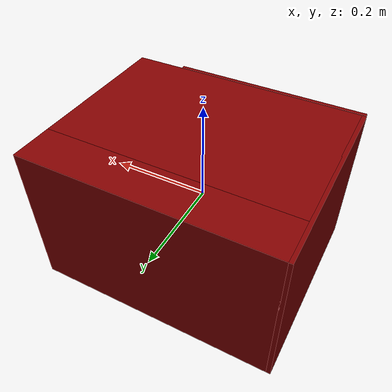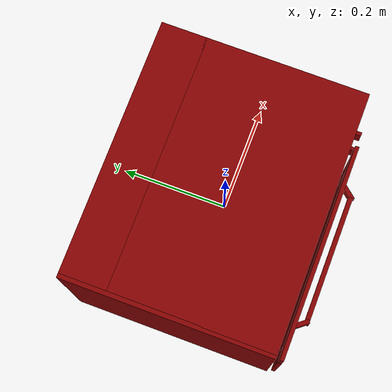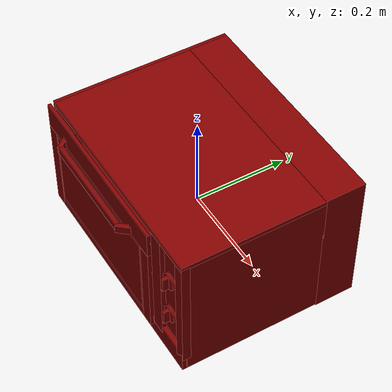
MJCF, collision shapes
<?xml version='1.0' encoding='UTF-8'?>
<mujoco model="model">
  <compiler angle="radian"/>
  <asset>
    <mesh file="visuals/Body001.obj" name="Body001_vis"/>
    <mesh file="visuals/Door001.obj" name="Door001_vis"/>
    <mesh file="visuals/Door001_Clear.obj" name="Door001_Clear_vis"/>
    <mesh file="visuals/Knob001.obj" name="Knob001_vis"/>
    <mesh file="visuals/Knob002.obj" name="Knob002_vis"/>
    <mesh file="visuals/Shelf001.obj" name="Shelf001_vis"/>
    <mesh file="visuals/Shelf002.obj" name="Shelf002_vis"/>
    <texture file="visuals/T_BC001.png" name="Body001_material" type="2d"/>
    <material name="Body001_material" rgba="1 1 1 1.0" texture="Body001_material" shininess="0.141421377658844" specular="1"/>
    <texture file="visuals/T_BC001.png" name="Door001_material" type="2d"/>
    <material name="Door001_material" rgba="1 1 1 1.0" texture="Door001_material" shininess="0.141421377658844" specular="1"/>
    <texture file="visuals/T_BC001.png" name="Door001_Clear_material" type="2d"/>
    <material name="Door001_Clear_material" rgba="1 1 1 0.800000011920929" texture="Door001_Clear_material" shininess="0.5" specular="0.3103448502657381"/>
    <texture file="visuals/T_BC001.png" name="Knob001_material" type="2d"/>
    <material name="Knob001_material" rgba="1 1 1 1.0" texture="Knob001_material" shininess="0.141421377658844" specular="0.3103448502657381"/>
    <texture file="visuals/T_BC001.png" name="Knob002_material" type="2d"/>
    <material name="Knob002_material" rgba="1 1 1 1.0" texture="Knob002_material" shininess="0.141421377658844" specular="0.3103448502657381"/>
    <texture file="visuals/T_BC001.png" name="Shelf001_material" type="2d"/>
    <material name="Shelf001_material" rgba="1 1 1 1.0" texture="Shelf001_material" shininess="0.141421377658844" specular="2"/>
    <texture file="visuals/T_BC001.png" name="Shelf002_material" type="2d"/>
    <material name="Shelf002_material" rgba="1 1 1 1.0" texture="Shelf002_material" shininess="0.141421377658844" specular="2"/>
  </asset>
  <default>
    <default class="visual">
      <geom conaffinity="0" contype="0" group="1" type="mesh"/>
    </default>
    <default class="collision">
      <geom group="0" rgba="0.5 0 0 0.5"/>
    </default>
    <default class="spawn">
      <geom group="0" rgba="1 1 1 0.5" contype="0" conaffinity="0"/>
      <site group="0" rgba="1 1 1 0.5"/>
    </default>
    <default class="region">
      <geom group="1" conaffinity="0" contype="0" rgba="0 1 0 0"/>
    </default>
  </default>
  <worldbody>
    <body>
      <body name="object">
        <geom mesh="Body001_vis" type="mesh" solimp="0.998 0.998 0.001" solref="0.001 1" density="100" friction="0.95 0.3 0.1" class="visual" material="Body001_material"/>
        <geom class="collision" type="box" pos="-0.2441130429506302 0.016248559579253197 5.9958576457574964e-05" size="0.00419982336461544 0.19757267832756042 0.15339186787605286" quat="1.0 0.0 0.0 0.0"/>
        <geom class="collision" type="box" pos="0.0035577856469899416 0.16968154907226562 5.9958576457574964e-05" size="0.24486888945102692 0.04413968697190285 0.15339186787605286" quat="1.0 0.0 0.0 0.0"/>
        <geom class="collision" type="box" pos="0.19376103579998016 -0.021811120212078094 -0.0015165776712819934" size="0.054665617644786835 0.14970235526561737 0.1484030783176422" quat="1.0 0.0 0.0 0.0"/>
        <geom class="collision" type="box" pos="0.15547572076320648 -0.17223013937473297 0.012488478794693947" size="0.015834785997867584 0.009101390838623047 0.13439801335334778" quat="1.0 0.0 0.0 0.0"/>
        <geom class="collision" type="box" pos="0.2371997833251953 -0.17223013937473297 0.012488478794693947" size="0.011356345377862453 0.009101390838623047 0.13439801335334778" quat="1.0 0.0 0.0 0.0"/>
        <geom class="collision" type="box" pos="0.0034546770621091127 -0.01811899244785309 -0.1288248598575592" size="0.24352025985717773 0.16321253776550293 0.023925891146063805" quat="1.0 0.0 0.0 0.0"/>
        <geom class="collision" type="box" pos="0.0035577856469899416 -0.026760555803775787 0.1486905813217163" size="0.24486888945102692 0.15465179085731506 0.004761239048093557" quat="1.0 0.0 0.0 0.0"/>
        <body name="Door001">
          <joint axis="1.0 0.0 0.0" pos="-0.048775337636470795 -0.18787136673927307 -0.11310728639364243" limited="true" name="Door001_joint" range="0.0 1.5707963267948966" type="hinge" damping="1" frictionloss="1" armature=".01" stiffness="0.8" springref="-0.1"/>
          <geom mesh="Door001_vis" type="mesh" solimp="0.998 0.998 0.001" solref="0.001 1" density="100" friction="0.95 0.3 0.1" class="visual" material="Door001_material"/>
          <geom class="collision" type="box" pos="-0.04814569652080536 -0.19160351157188416 0.12263495475053787" size="0.1985292136669159 0.0036813917104154825 0.027727477252483368" quat="1.0 0.0 0.0 0.0"/>
          <geom class="collision" type="box" pos="-0.050485193729400635 -0.21175143122673035 0.10493189841508865" size="0.11941026896238327 0.004057358019053936 0.009291715919971466" quat="1.0 0.0 0.0 0.0"/>
          <geom class="collision" type="box" pos="0.07665327191352844 -0.20415230095386505 0.10493189841508865" size="0.01539598684757948 0.004057358019053936 0.009291715919971466" quat="0.907344400882721 0.0 0.0 0.4203880727291107"/>
          <geom class="collision" type="box" pos="-0.1726234406232834 -0.2026226818561554 0.10493189841508865" size="0.01539598684757948 0.004057358019053936 0.009291715919971466" quat="0.4325786530971527 0.0 0.0 0.901596188545227"/>
          <geom class="collision" type="box" pos="-0.23212796449661255 -0.19160351157188416 -0.008206048980355263" size="0.014546982012689114 0.0036813917104154825 0.10311352461576462" quat="1.0 0.0 0.0 0.0"/>
          <geom class="collision" type="box" pos="0.1367560774087906 -0.19160351157188416 -0.008206052705645561" size="0.013627446256577969 0.0036813917104154825 0.10311352461576462" quat="1.0 0.0 0.0 0.0"/>
          <geom class="collision" type="box" pos="-0.0472261942923069 -0.19160351157188416 -0.10271437466144562" size="0.17035481333732605 0.0036813917104154825 0.00860521662980318" quat="1.0 0.0 0.0 0.0"/>
          <body name="Door001_Clear">
            <geom mesh="Door001_Clear_vis" type="mesh" solimp="0.998 0.998 0.001" solref="0.001 1" density="100" friction="0.95 0.3 0.1" class="visual" material="Door001_Clear_material"/>
            <geom class="collision" type="box" pos="-0.0472261942923069 -0.19160351157188416 0.0007110745646059513" size="0.1658865213394165 0.0036813917104154825 0.09052855521440506" quat="1.0 0.0 0.0 0.0"/>
          </body>
        </body>
        <body name="Knob001">
          <joint axis="0.0 1.0 0.0" pos="0.1982269287109375 -0.17756953835487366 0.06402279436588287" limited="true" name="Knob001_joint" range="0.0 4.625122517784973" type="hinge" damping="0.05" armature="0.001"/>
          <geom mesh="Knob001_vis" type="mesh" solimp="0.998 0.998 0.001" solref="0.001 1" density="100" friction="0.95 0.3 0.1" class="visual" material="Knob001_material"/>
          <geom class="collision" type="box" pos="0.19860117137432098 -0.1873530149459839 0.0640273466706276" size="0.0034536204766482115 0.006564540322870016 0.015590326860547066" quat="1.0 0.0 0.0 0.0"/>
          <geom class="collision" type="cylinder" pos="0.1980726718902588 -0.17784664034843445 0.06423473358154297" size="0.017978839576244354 0.0029833735898137093" quat="0.7071067094802856 0.7071068286895752 0.0 0.0"/>
        </body>
        <body name="Knob002">
          <joint axis="0.0 1.0 0.0" pos="0.1982269287109375 -0.17756953835487366 -0.03266529738903046" limited="true" name="Knob002_joint" range="0.0 4.799655442984406" type="hinge" damping="0.05" armature="0.001"/>
          <geom mesh="Knob002_vis" type="mesh" solimp="0.998 0.998 0.001" solref="0.001 1" density="100" friction="0.95 0.3 0.1" class="visual" material="Knob002_material"/>
          <geom class="collision" type="box" pos="0.19860117137432098 -0.1873530149459839 -0.03247858211398125" size="0.0034536204766482115 0.006564540322870016 0.015952182933688164" quat="1.0 0.0 0.0 0.0"/>
          <geom class="collision" type="cylinder" pos="0.1980726718902588 -0.17784664034843445 -0.032568540424108505" size="0.017978839576244354 0.0029833735898137093" quat="0.7071067094802856 0.7071068286895752 0.0 0.0"/>
        </body>
        <body name="Shelf001">
          <joint axis="0.0 -1.0 0.0" pos="-0.049605634063482285 -0.0227875504642725 0.04992767050862312" limited="true" name="Shelf001_joint" range="0.0 0.2" type="slide" damping="1" frictionloss="1" armature=".01" stiffness="0.05"/>
          <geom mesh="Shelf001_vis" type="mesh" solimp="0.998 0.998 0.001" solref="0.001 1" density="100" friction="0.95 0.3 0.1" class="visual" material="Shelf001_material"/>
          <geom class="collision" type="box" pos="-0.05084526538848877 -0.02230246737599373 0.03639897331595421" size="0.1735331416130066 0.1302265077829361 0.002406227868050337" quat="1.0 0.0 0.0 0.0"/>
          <geom class="collision" type="box" pos="0.12663137912750244 -0.02217262238264084 0.04547247663140297" size="0.012199101969599724 0.13035635650157928 0.002406227868050337" quat="0.9129273295402527 0.0 -0.408122181892395 0.0"/>
          <geom class="collision" type="box" pos="-0.22785645723342896 -0.02230246737599373 0.044808804988861084" size="0.011334135197103024 0.1302265077829361 0.0024062281008809805" quat="0.48012229800224304 -0.0 -0.8772015571594238 -0.0"/>
        </body>
        <body name="Shelf002">
          <joint axis="0.0 -1.0 0.0" pos="-0.049605634063482285 -0.0227875504642725 -0.03988266363739967" limited="true" name="Shelf002_joint" range="0.0 0.2" type="slide" damping="1" frictionloss="1" armature=".01" stiffness="0.05"/>
          <geom mesh="Shelf002_vis" type="mesh" solimp="0.998 0.998 0.001" solref="0.001 1" density="100" friction="0.95 0.3 0.1" class="visual" material="Shelf002_material"/>
          <geom class="collision" type="box" pos="-0.05084526538848877 -0.02230246737599373 -0.05209459736943245" size="0.1735331416130066 0.1302265077829361 0.0024062234442681074" quat="1.0 0.0 0.0 0.0"/>
          <geom class="collision" type="box" pos="0.1256789267063141 -0.02230246737599373 -0.04503250867128372" size="0.010853913612663746 0.1302265077829361 0.002406227868050337" quat="0.9129273295402527 0.0 -0.408122181892395 0.0"/>
          <geom class="collision" type="box" pos="-0.22870148718357086 -0.02230246737599373 -0.04446806386113167" size="0.011601341888308525 0.1302265077829361 0.002406228333711624" quat="0.487621545791626 -0.0 -0.873055100440979 -0.0"/>
        </body>
        <geom class="region" name="reg_main" type="box" pos="-7.82310962677002e-08 0.009792514145374298 -2.2351741790771484e-08" size="0.24947988986968994 0.20587435364723206 0.1545785367488861"/>
        <geom class="region" name="reg_int" type="box" pos="-0.049344442784786224 -0.026328876614570618 0.01629418134689331" size="0.19179866462945938 0.15373121201992035 0.13113568723201752"/>
      </body>
    </body>
  </worldbody>
  <actuator>
    <motor name="Door001_joint_actuator" joint="Door001_joint" gear="50"/>
    <motor name="Knob001_joint_actuator" joint="Knob001_joint" gear="50"/>
    <motor name="Knob002_joint_actuator" joint="Knob002_joint" gear="50"/>
    <motor name="Shelf001_joint_actuator" joint="Shelf001_joint" gear="50"/>
    <motor name="Shelf002_joint_actuator" joint="Shelf002_joint" gear="50"/>
  </actuator>
</mujoco>
